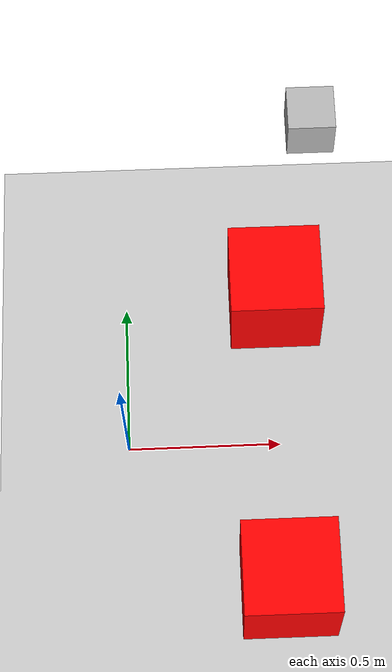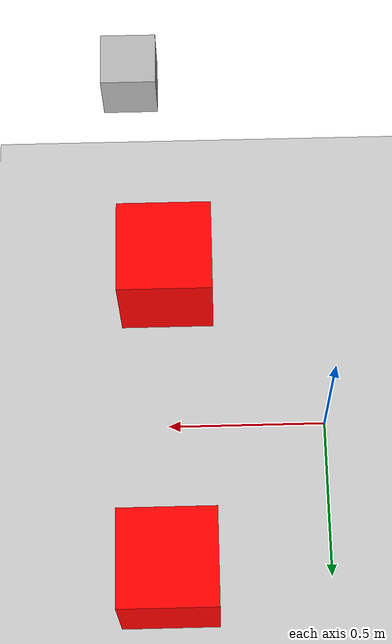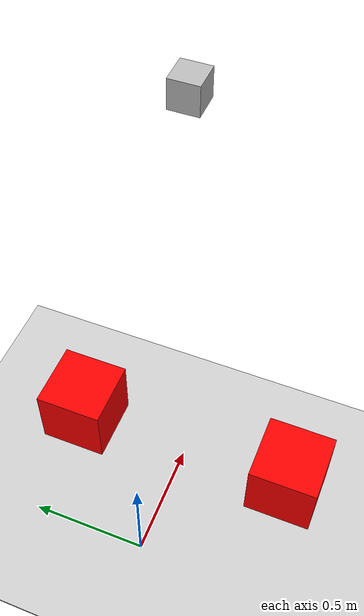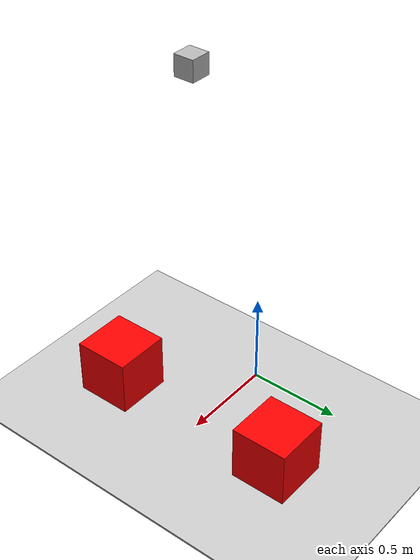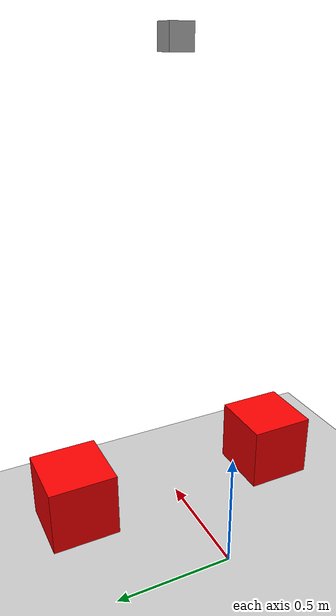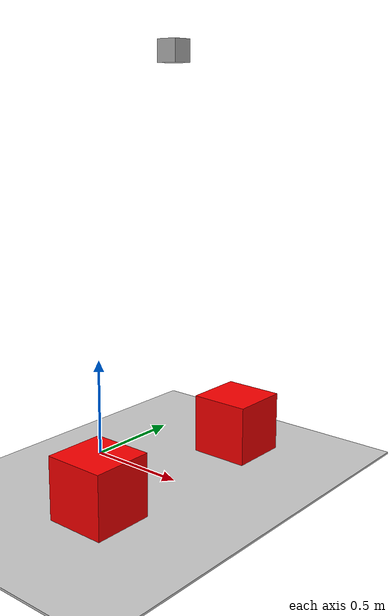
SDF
<?xml version="1.0" ?>
<!--
  Demo world with a widget displaying images coming from a depth camera sensor.
-->
<sdf version="1.6">
  <world name="depth_camera_world">
    <physics name="1ms" type="ignored">
      <max_step_size>0.01</max_step_size>
      <real_time_factor>1.0</real_time_factor>
    </physics>
    <plugin
      filename="ignition-gazebo-physics-system"
      name="ignition::gazebo::systems::Physics">
    </plugin>
    <plugin
      filename="ignition-gazebo-sensors-system"
      name="ignition::gazebo::systems::Sensors">
      <render_engine>ogre2</render_engine>
    </plugin>
    <plugin
      filename="ignition-gazebo-scene-broadcaster-system"
      name="ignition::gazebo::systems::SceneBroadcaster">
    </plugin>
    <plugin
      filename="ignition-gazebo-user-commands-system"
      name="ignition::gazebo::systems::UserCommands">
    </plugin>

    <gui fullscreen="0">

      <!-- 3D scene -->
      <plugin filename="MinimalScene" name="3D View">
        <ignition-gui>
          <title>3D View</title>
          <property type="bool" key="showTitleBar">false</property>
          <property type="string" key="state">docked</property>
        </ignition-gui>

        <engine>ogre2</engine>
        <scene>scene</scene>
        <ambient_light>0.4 0.4 0.4</ambient_light>
        <background_color>0.8 0.8 0.8</background_color>
        <camera_pose>-6 0 6 0 0.5 0</camera_pose>
      </plugin>

      <!-- Plugins that add functionality to the scene -->
      <plugin filename="EntityContextMenuPlugin" name="Entity context menu">
        <ignition-gui>
          <property key="state" type="string">floating</property>
          <property key="width" type="double">5</property>
          <property key="height" type="double">5</property>
          <property key="showTitleBar" type="bool">false</property>
        </ignition-gui>
      </plugin>
      <plugin filename="GzSceneManager" name="Scene Manager">
        <ignition-gui>
          <property key="resizable" type="bool">false</property>
          <property key="width" type="double">5</property>
          <property key="height" type="double">5</property>
          <property key="state" type="string">floating</property>
          <property key="showTitleBar" type="bool">false</property>
        </ignition-gui>
      </plugin>
      <plugin filename="InteractiveViewControl" name="Interactive view control">
        <ignition-gui>
          <property key="resizable" type="bool">false</property>
          <property key="width" type="double">5</property>
          <property key="height" type="double">5</property>
          <property key="state" type="string">floating</property>
          <property key="showTitleBar" type="bool">false</property>
        </ignition-gui>
      </plugin>
      <plugin filename="CameraTracking" name="Camera Tracking">
        <ignition-gui>
          <property key="resizable" type="bool">false</property>
          <property key="width" type="double">5</property>
          <property key="height" type="double">5</property>
          <property key="state" type="string">floating</property>
          <property key="showTitleBar" type="bool">false</property>
        </ignition-gui>
      </plugin>

      <plugin filename="ImageDisplay" name="Image Display">
        <ignition-gui>
          <property key="state" type="string">docked</property>
        </ignition-gui>
      </plugin>
    </gui>

    <light type="directional" name="sun">
      <cast_shadows>true</cast_shadows>
      <pose>0 0 10 0 0 0</pose>
      <diffuse>0.8 0.8 0.8 1</diffuse>
      <specular>0.2 0.2 0.2 1</specular>
      <attenuation>
        <range>1000</range>
        <constant>0.9</constant>
        <linear>0.01</linear>
        <quadratic>0.001</quadratic>
      </attenuation>
      <direction>-0.5 0.1 -0.9</direction>
    </light>

    <model name="ground_plane">
      <pose>0 0 -0.05 0 0 0</pose>
      <static>true</static>
      <link name="link">
        <collision name="collision">
          <geometry>
            <box>
              <size>20 20 0.01</size>
            </box>
          </geometry>
        </collision>
        <visual name="visual">
          <geometry>
            <box>
              <size>20 20 0.01</size>
            </box>
          </geometry>
          <material>
            <ambient>0.8 0.8 0.8 1</ambient>
            <diffuse>0.8 0.8 0.8 1</diffuse>
            <specular>0.8 0.8 0.8 1</specular>
          </material>
        </visual>
      </link>
    </model>

    <model name="box1">
      <pose>0.5 -0.5 0.15 0 0 0</pose>
      <link name="box_link">
        <inertial>
          <inertia>
            <ixx>1</ixx>
            <ixy>0</ixy>
            <ixz>0</ixz>
            <iyy>1</iyy>
            <iyz>0</iyz>
            <izz>1</izz>
          </inertia>
          <mass>1.0</mass>
        </inertial>
        <collision name="box_collision">
          <geometry>
            <box>
              <size>0.3 0.3 0.3</size>
            </box>
          </geometry>
        </collision>

        <visual name="box_visual">
          <geometry>
            <box>
              <size>0.3 0.3 0.3</size>
            </box>
          </geometry>
          <material>
            <ambient>1 0 0 1</ambient>
            <diffuse>1 0 0 1</diffuse>
            <specular>1 0 0 1</specular>
          </material>
        </visual>
      </link>
    </model>

    <model name="box2">
      <pose>0.5 0.5 0.15 0 0 0</pose>
      <link name="box_link">
        <inertial>
          <inertia>
            <ixx>1</ixx>
            <ixy>0</ixy>
            <ixz>0</ixz>
            <iyy>1</iyy>
            <iyz>0</iyz>
            <izz>1</izz>
          </inertia>
          <mass>1.0</mass>
        </inertial>
        <collision name="box_collision">
          <geometry>
            <box>
              <size>0.3 0.3 0.3</size>
            </box>
          </geometry>
        </collision>

        <visual name="box_visual">
          <geometry>
            <box>
              <size>0.3 0.3 0.3</size>
            </box>
          </geometry>
          <material>
            <ambient>1 0 0 1</ambient>
            <diffuse>1 0 0 1</diffuse>
            <specular>1 0 0 1</specular>
          </material>
        </visual>
      </link>
    </model>

    <model name="depth_camera">
      <pose>0.5 0 2.0 0 1.57 0</pose>
      <link name="link">
        <pose>0.0 0.0 0.0 0 0 0</pose>
        <inertial>
          <mass>0.1</mass>
          <inertia>
            <ixx>0.000166667</ixx>
            <iyy>0.000166667</iyy>
            <izz>0.000166667</izz>
          </inertia>
        </inertial>
        <collision name="collision">
          <geometry>
            <box>
              <size>0.1 0.1 0.1</size>
            </box>
          </geometry>
        </collision>
        <visual name="visual">
          <geometry>
            <box>
              <size>0.1 0.1 0.1</size>
            </box>
          </geometry>
        </visual>
        <sensor name="depth_camera1" type="depth_camera">
          <update_rate>10</update_rate>
          <topic>depth_camera</topic>
          <camera>
            <horizontal_fov>1.05</horizontal_fov>
            <image>
              <width>256</width>
              <height>256</height>
              <format>R_FLOAT32</format>
            </image>
            <clip>
              <near>0.1</near>
              <far>10.0</far>
            </clip>
          </camera>
          </sensor>
      </link>
      <static>true</static>
    </model>
  </world>
</sdf>
